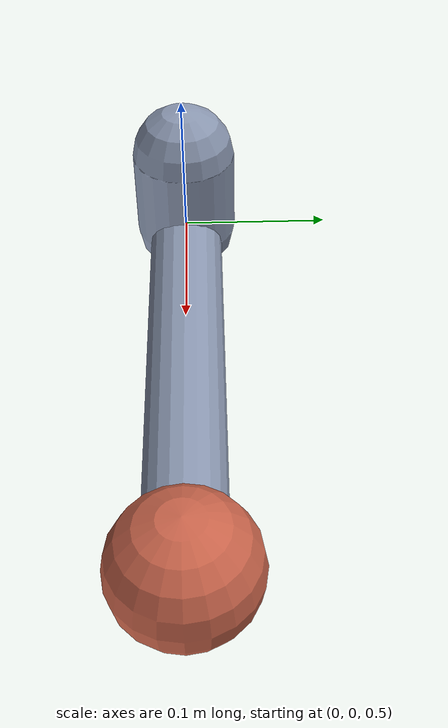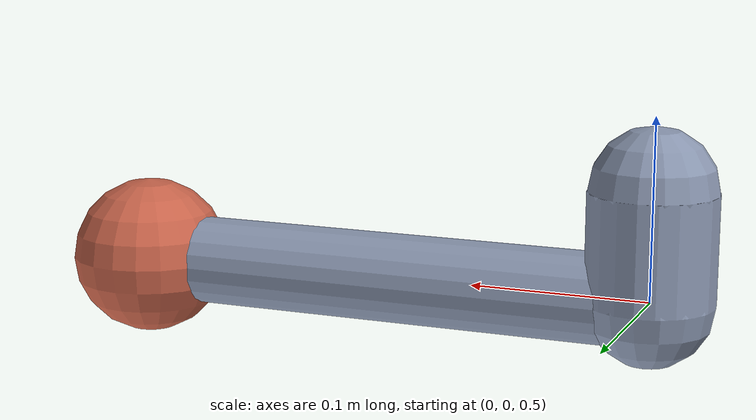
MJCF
<mujoco model="wayland_elbow_v1">
  <option gravity="0 0 -9.81" timestep="0.0005" integrator="RK4"/>
  <default>
    <joint armature="0.01" damping="0.2"/>
    <geom rgba="0.55 0.6 0.7 1"/>
  </default>

  <worldbody>
    <body name="upperarm" pos="0 0 0.5">
      <geom name="ua" type="capsule" fromto="0 0 0 0 0 0.06" size="0.035"/>
      <body name="forearm" pos="0 0 0">
        <!-- 0 deg = horizontal; negative = curled up. range keeps it anatomical. -->
        <joint name="elbow" type="hinge" axis="0 1 0" pos="0 0 0" range="-145 5"/>
        <geom name="fa" type="capsule" fromto="0 0 0 0.30 0 0" size="0.025" mass="1.6"/>
        <site name="hand" pos="0.30 0 0" size="0.01"/>
        <body name="load" pos="0.30 0 0">
          <geom name="load" type="sphere" size="0.045" mass="10" rgba="0.8 0.4 0.3 1"/>
        </body>
      </body>
    </body>
  </worldbody>

  <actuator>
    <!-- gear=1 so ctrl is commanded joint torque in N*m; clamp = firmware torque limit -->
    <motor name="elbow_mot" joint="elbow" gear="1" ctrlrange="-40 40"/>
  </actuator>
</mujoco>
